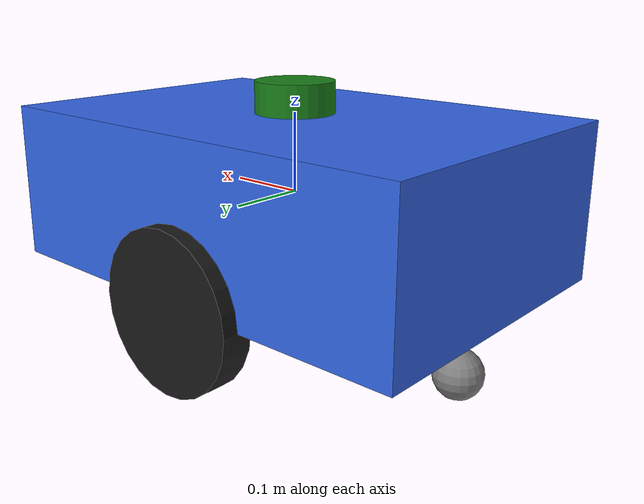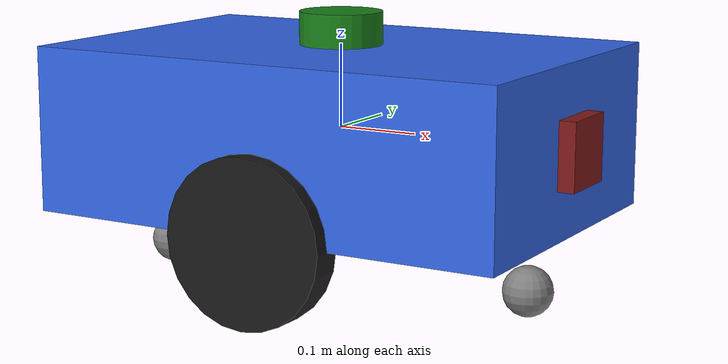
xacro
<?xml version="1.0"?>
<robot name="my_robot" xmlns:xacro="http://www.ros.org/wiki/xacro">

  <xacro:property name="base_length" value="0.6"/>
  <xacro:property name="base_width" value="0.4"/>
  <xacro:property name="base_height" value="0.2"/>
  <xacro:property name="wheel_radius" value="0.1"/>
  <xacro:property name="wheel_width" value="0.04"/>
  <xacro:property name="wheel_offset_y" value="0.2"/>
  <xacro:property name="wheel_offset_z" value="${-base_height/2}"/>
  <xacro:property name="caster_radius" value="0.03"/>
  <xacro:property name="laser_radius" value="0.05"/>
  <xacro:property name="laser_height" value="0.04"/>
  <xacro:property name="camera_size_x" value="0.02"/>
  <xacro:property name="camera_size_y" value="0.08"/>
  <xacro:property name="camera_size_z" value="0.08"/>
  <xacro:property name="caster_offset_z" value="${wheel_offset_z - wheel_radius + caster_radius}"/>

    <!-- ① 摩擦（放前面，方便对照上面刚定义的轮子）-->
  <gazebo reference="wheel_left">
    <mu1>1.0</mu1>
    <mu2>1.0</mu2>
  </gazebo>

  <gazebo reference="wheel_right">
    <mu1>1.0</mu1>
    <mu2>1.0</mu2>
  </gazebo>

  <link name="base_link">

    <visual>
      <origin xyz="0 0 0" rpy="0 0 0"/>
      <geometry>
        <box size="${base_length} ${base_width} ${base_height}"/>
      </geometry>
      <material name="blue">
        <color rgba="0.2 0.4 0.9 1.0"/>
      </material>
    </visual>

    <collision>
      <origin xyz="0 0 0" rpy="0 0 0"/>
      <geometry>
        <box size="${base_length} ${base_width} ${base_height}"/>
      </geometry>
    </collision>

    <inertial>
      <origin xyz="0 0 0" rpy="0 0 0"/>
      <mass value="5.0"/>
      <inertia ixx="0.1" ixy="0" ixz="0" iyy="0.1" iyz="0" izz="0.1"/>
    </inertial>

  </link>

  <xacro:macro name="caster" params="caster_name x_offset">

    <link name="caster_${caster_name}">
      <visual>
        <origin xyz="0 0 0" rpy="0 0 0"/>
        <geometry>
          <sphere radius="${caster_radius}"/>
        </geometry>
        <material name="gray">
          <color rgba="0.5 0.5 0.5 1.0"/>
        </material>
      </visual>
      <collision>
        <origin xyz="0 0 0" rpy="0 0 0"/>
        <geometry>
          <sphere radius="${caster_radius}"/>
        </geometry>
      </collision>
      <inertial>
        <origin xyz="0 0 0" rpy="0 0 0"/>
        <mass value="0.1"/>
        <inertia ixx="0.001" ixy="0" ixz="0" iyy="0.001" iyz="0" izz="0.001"/>
      </inertial>
    </link>

    <joint name="caster_${caster_name}_joint" type="fixed">
      <parent link="base_link"/>
      <child  link="caster_${caster_name}"/>
      <origin xyz="${x_offset} 0 ${caster_offset_z}" rpy="0 0 0"/>
    </joint>

  </xacro:macro>

  <xacro:caster caster_name="front" x_offset="0.25"/>
  <xacro:caster caster_name="back"  x_offset="-0.25"/>

  <xacro:macro name="wheel" params="wheel_name y_offset">

    <link name="wheel_${wheel_name}">

      <visual>
        <origin xyz="0 0 0" rpy="0 0 0"/>
        <geometry>
          <cylinder radius="${wheel_radius}" length="${wheel_width}"/>
        </geometry>
        <material name="black">
          <color rgba="0.1 0.1 0.1 1.0"/>
        </material>
      </visual>

      <collision>
        <origin xyz="0 0 0" rpy="0 0 0"/>
        <geometry>
          <cylinder radius="${wheel_radius}" length="${wheel_width}"/>
        </geometry>
      </collision>

      <inertial>
        <origin xyz="0 0 0" rpy="0 0 0"/>
        <mass value="0.5"/>
        <inertia ixx="0.001" ixy="0" ixz="0" iyy="0.001" iyz="0" izz="0.001"/>
      </inertial>

    </link>

    <joint name="wheel_${wheel_name}_joint" type="continuous">
      <parent link="base_link"/>
      <child  link="wheel_${wheel_name}"/>
      <origin xyz="0 ${y_offset} ${wheel_offset_z}" rpy="1.5708 0 0"/>
      <axis xyz="0 0 -1"/>
    </joint>

  </xacro:macro>

  <xacro:wheel wheel_name="left"  y_offset="${wheel_offset_y}"/>
  <xacro:wheel wheel_name="right" y_offset="${-wheel_offset_y}"/>

  <link name="laser_link">

    <visual>
      <origin xyz="0 0 0" rpy="0 0 0"/>
      <geometry>
        <cylinder radius="${laser_radius}" length="${laser_height}"/>
      </geometry>
      <material name="green">
        <color rgba="0.1 0.5 0.1 1.0"/>
      </material>
    </visual>

    <collision>
      <origin xyz="0 0 0" rpy="0 0 0"/>
      <geometry>
        <cylinder radius="${laser_radius}" length="${laser_height}"/>
      </geometry>
    </collision>

    <inertial>
      <origin xyz="0 0 0" rpy="0 0 0"/>
      <mass value="0.5"/>
      <inertia ixx="0.001" ixy="0" ixz="0" iyy="0.001" iyz="0" izz="0.001"/>
    </inertial>

  </link>

  <joint name="laser" type="fixed">
    <parent link="base_link"/>
    <child  link="laser_link"/>
    <origin xyz="0 0 ${base_height/2 + laser_height/2}" rpy="0 0 0"/>
  </joint>

  <link name="camera_link">

    <visual>
      <origin xyz="0 0 0" rpy="0 0 0"/>
      <geometry>
         <box size="${camera_size_x} ${camera_size_y} ${camera_size_z}"/>
      </geometry>
      <material name="red">
        <color rgba="0.5 0.1 0.1 1.0"/>
      </material>
    </visual>

    <collision>
      <origin xyz="0 0 0" rpy="0 0 0"/>
      <geometry>
        <box size="${camera_size_x} ${camera_size_y} ${camera_size_z}"/>
      </geometry>
    </collision>

    <inertial>
      <origin xyz="0 0 0" rpy="0 0 0"/>
      <mass value="0.1"/>
      <inertia ixx="0.001" ixy="0" ixz="0" iyy="0.001" iyz="0" izz="0.001"/>
    </inertial>

  </link>

  <joint name="camera" type="fixed">
    <parent link="base_link"/>
    <child  link="camera_link"/>
    <origin xyz="${base_length/2 + camera_size_x/2} 0 0" rpy="0 0 0"/>
  </joint>

    <!-- ══════════ Gazebo 差速驱动（插件） ══════════ -->
  <gazebo>
    <plugin filename="gz-sim-diff-drive-system"
            name="gz::sim::systems::DiffDrive">
      <left_joint>wheel_left_joint</left_joint>
      <right_joint>wheel_right_joint</right_joint>
      <wheel_separation>${wheel_offset_y * 2}</wheel_separation>
      <wheel_radius>${wheel_radius}</wheel_radius>
      <topic>cmd_vel</topic>
      <odom_topic>odom</odom_topic>
      <tf_topic>tf</tf_topic>
      <frame_id>odom</frame_id>
      <child_frame_id>base_link</child_frame_id>
      <max_linear_acceleration>1.0</max_linear_acceleration>
    </plugin>
  </gazebo>

    <!-- ══════════ 激光雷达传感器 ══════════ -->
  <gazebo reference="base_link">
    <sensor name="laser" type="gpu_lidar">
      <gz_frame_id>laser_link</gz_frame_id>
      <pose>0 0 ${base_height/2 + laser_height/2} 0 0 0</pose>
      <visualize>true</visualize>
      <update_rate>8</update_rate>
      <topic>scan</topic>
      <always_on>1</always_on>
      <lidar>
        <scan>
          <horizontal>
            <samples>360</samples>
            <resolution>1</resolution>
            <min_angle>-3.14159</min_angle>
            <max_angle>3.14159</max_angle>
          </horizontal>
        </scan>
        <range>
          <min>0.1</min>
          <max>20.0</max>
          <resolution>0.01</resolution>
        </range>
            <!-- ══════════ 噪声 ══════════ -->
        <noise>
          <type>gaussian</type>
          <mean>0.0</mean>
          <stddev>0.01</stddev>
        </noise>
      </lidar>
    </sensor>
  </gazebo>

  <gazebo>
    <plugin filename="gz-sim-sensors-system"
            name="gz::sim::systems::Sensors">
      <render_engine>ogre2</render_engine>
    </plugin>
  </gazebo>

  <gazebo>
    <plugin filename="gz-sim-joint-state-publisher-system"
            name="gz::sim::systems::JointStatePublisher">
      <topic>/joint_states</topic>
    </plugin>
  </gazebo>

    <!-- ══════════ ros2_control（第 30 天的状态，先只声明）══════════ -->
  <ros2_control name="GazeboSimSystem" type="system">
    <hardware>
      <plugin>gz_ros2_control/GazeboSimSystem</plugin>
    </hardware>
    <joint name="wheel_left_joint">
      <command_interface name="velocity"/>
      <state_interface name="position"/>
      <state_interface name="velocity"/>
    </joint>
    <joint name="wheel_right_joint">
      <command_interface name="velocity"/>
      <state_interface name="position"/>
      <state_interface name="velocity"/>
    </joint>
  </ros2_control>

  <gazebo>
    <plugin filename="gz_ros2_control-system" name="gz_ros2_control::GazeboSimROS2ControlPlugin">
      <ros>
        <namespace></namespace>
      </ros>
      <parameters>$(find my_robot)/config/ros2_control.yaml</parameters>
    </plugin>
  </gazebo>

</robot>
